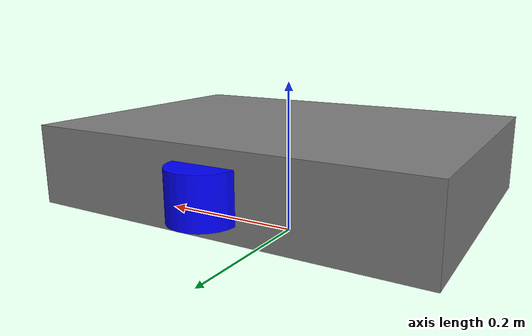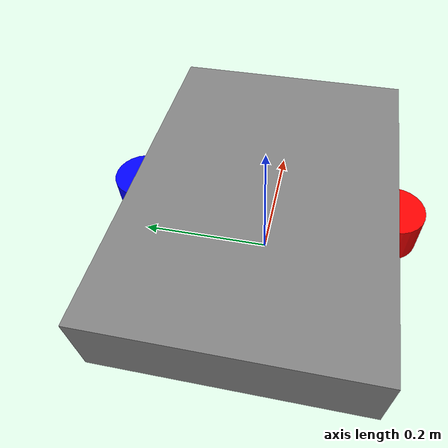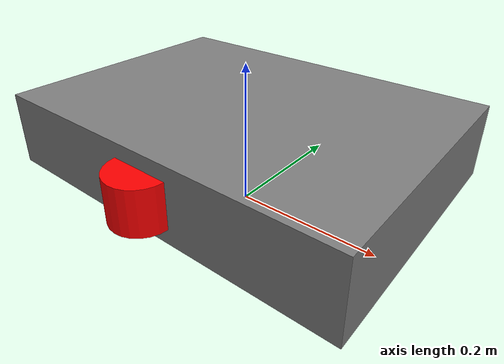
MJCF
<mujoco model="diff_drive">
  <compiler angle="degree" coordinate="local"/>
  <option timestep="0.01" gravity="0 0 -9.81"/>

  <worldbody>
    <!-- corpo principal -->
    <body name="base" pos="0 0 0.1">
      <!-- caixote do robô -->
      <geom name="base_geom" type="box" size="0.25 0.18 0.05" density="500"/>

      <!-- roda esquerda -->
      <body name="left_wheel" pos="0 0.18 0">
        <joint name="left_wheel_joint" type="hinge" axis="0 1 0" damping="0.01" limited="false"/>
        <geom name="left_wheel_geom" type="cylinder" size="0.04 0.03" rgba="0 0 1 1"/>
      </body>

      <!-- roda direita -->
      <body name="right_wheel" pos="0 -0.18 0">
        <joint name="right_wheel_joint" type="hinge" axis="0 1 0" damping="0.01" limited="false"/>
        <geom name="right_wheel_geom" type="cylinder" size="0.04 0.03" rgba="1 0 0 1"/>
      </body>
    </body>
  </worldbody>

  <!-- atuadores: vamos controlar por velocidade -->
  <actuator>
    <velocity name="left_wheel_act" joint="left_wheel_joint" kv="50" ctrlrange="-10 10"/>
    <velocity name="right_wheel_act" joint="right_wheel_joint" kv="50" ctrlrange="-10 10"/>
  </actuator>
</mujoco>
